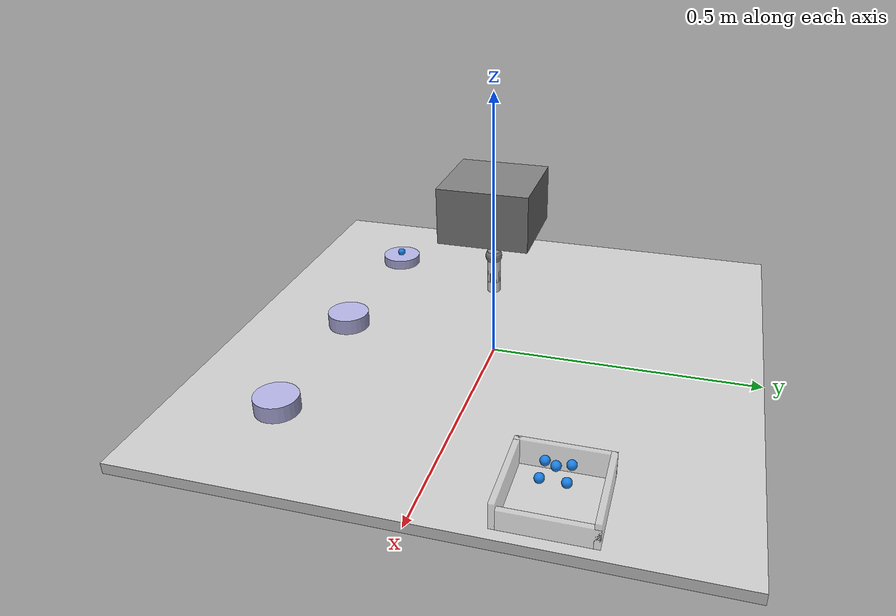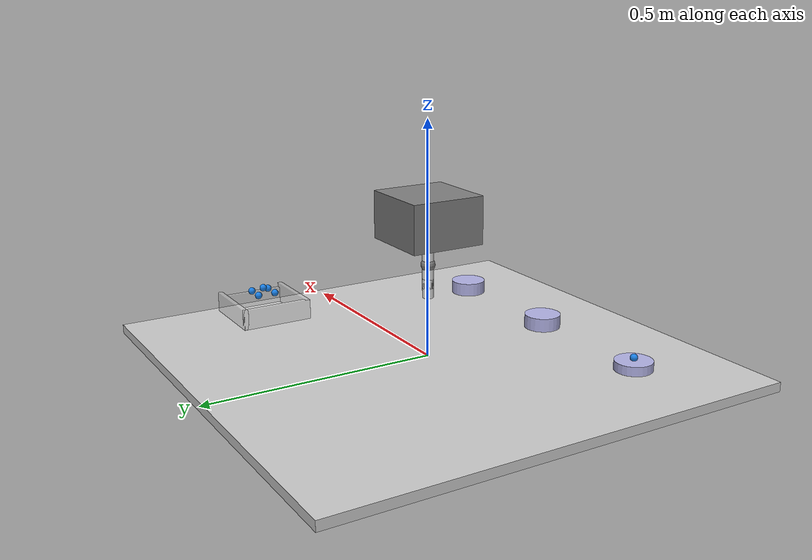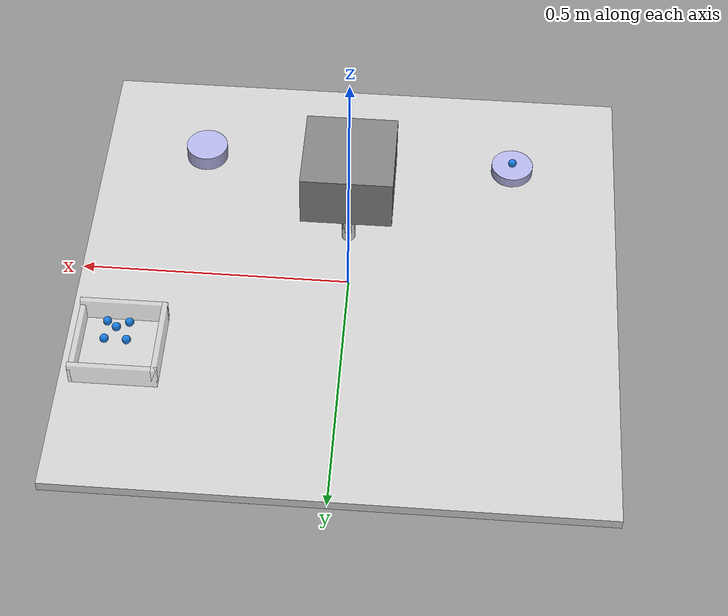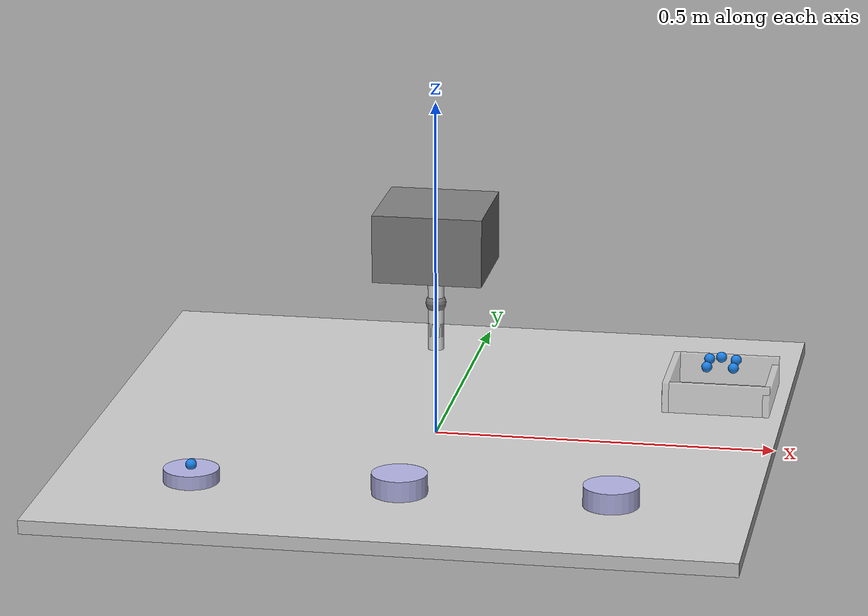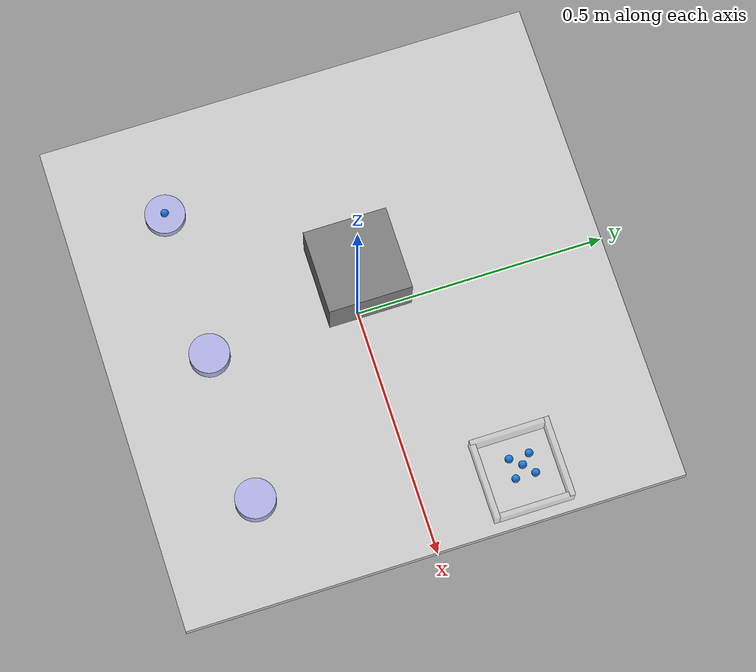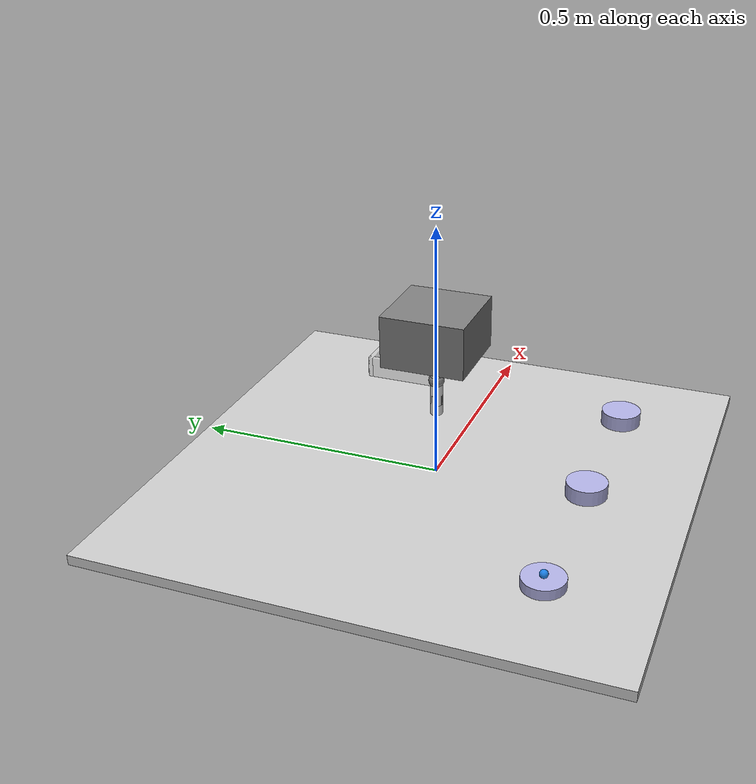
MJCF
<?xml version="1.0" encoding="utf-8"?>
<mujoco model="particle_pipette_system">
    <compiler angle="radian" coordinate="local" meshdir="../meshes" texturedir="../textures"/>
    <option timestep="0.001" iterations="100" solver="Newton" tolerance="1e-10" gravity="0 0 -9.81"/>

    <size nconmax="1000" njmax="2000" nstack="1000000"/>

    <asset>
        <material name="well_material" rgba="0.7 0.7 0.9 1"/>
        <material name="pipette_material" rgba="0.9 0.9 0.9 1"/>
        <material name="liquid_material" rgba="0.2 0.6 1.0 0.8"/>
        <material name="machine_material" rgba="0.5 0.5 0.5 1"/>
        <material name="surface_material" rgba="0.8 0.8 0.8 1"/>
        <material name="particle_material" rgba="0.1 0.5 0.9 0.9"/>
        <material name="transparent" rgba="0.9 0.9 0.9 0.3"/>
        <material name="container_material" rgba="0.8 0.8 0.8 0.4"/>
    </asset>

    <default>
        <geom friction="0.5 0.1 0.1" solimp="0.9 0.95 0.001" solref="0.02 1"/>
        <joint damping="0.1"/>
    </default>

    <worldbody>
        <!-- Lighting and camera -->
        <light directional="true" diffuse=".8 .8 .8" specular=".2 .2 .2" pos="0 0 5" dir="0 0 -1"/>
        <camera name="top_view" pos="0 0 1.5" xyaxes="1 0 0 0 1 0"/>
        <camera name="side_view" pos="1.0 0 0.5" xyaxes="0 1 0 0 0 1"/>

        <!-- Surface -->
        <body name="surface" pos="0 0 0">
            <geom type="box" size="0.5 0.5 0.01" rgba="0.8 0.8 0.8 1" material="container_material"/>
        </body>

        <!-- Wells with particle liquid -->
        <body name="well_1" pos="-0.3 -0.3 0.0">
            <geom name="well_1_wall" type="cylinder" size="0.04 0.03" material="well_material"/>
            <geom name="well_1_bottom" type="cylinder" size="0.035 0.005" pos="0 0 -0.025" material="well_material"/>
            <site name="well_1_site" pos="0 0 0" size="0.005"/>
        </body>

        <!-- Transparent container for loose particles -->

        <body name="well_2" pos="0 -0.3 0.01">
            <geom name="well_2_wall" type="cylinder" size="0.04 0.03" material="well_material"/>
            <geom name="well_2_bottom" type="cylinder" size="0.035 0.005" pos="0 0 -0.025" material="well_material"/>
            <site name="well_2_site" pos="0 0 0" size="0.005"/>
        </body>

        <body name="well_3" pos="0.3 -0.3 0.01">
            <geom name="well_3_wall" type="cylinder" size="0.04 0.03" material="well_material"/>
            <geom name="well_3_bottom" type="cylinder" size="0.035 0.005" pos="0 0 -0.025" material="well_material"/>
            <site name="well_3_site" pos="0 0 0" size="0.005"/>
        </body>

        <!-- Transparent container for loose particles -->
        <body name="particle_container" pos="0.4 0.2 0.00">
            <!-- Container walls (transparent) -->
            <geom name="container_bottom" type="box" size="0.08 0.08 0.005" pos="0 0 0" material="container_material"/>
            <geom name="container_wall_1" type="box" size="0.005 0.08 0.02" pos="0.075 0 0.025" material="container_material"/>
            <geom name="container_wall_2" type="box" size="0.005 0.08 0.03" pos="-0.075 0 0.025" material="container_material"/>
            <geom name="container_wall_3" type="box" size="0.08 0.005 0.03" pos="0 0.075 0.025" material="container_material"/>
            <geom name="container_wall_4" type="box" size="0.08 0.005 0.03" pos="0 -0.075 0.025" material="container_material"/>
        </body>

        <!-- Free particles in wells (moved to top level) -->
        <!-- Well 1 particles -->
        <body name="particle_1_1" pos="-0.315 -0.315 0.017">
            <freejoint/>
            <geom name="p_1_1" type="sphere" size="0.008" material="particle_material" mass="0.001"/>
        </body>
        <body name="particle_1_2" pos="-0.285 -0.315 0.017">
            <freejoint/>
            <geom name="p_1_2" type="sphere" size="0.008" material="particle_material" mass="0.001"/>
        </body>
        <body name="particle_1_3" pos="-0.315 -0.285 0.017">
            <freejoint/>
            <geom name="p_1_3" type="sphere" size="0.008" material="particle_material" mass="0.001"/>
        </body>
        <body name="particle_1_4" pos="-0.285 -0.285 0.017">
            <freejoint/>
            <geom name="p_1_4" type="sphere" size="0.008" material="particle_material" mass="0.001"/>
        </body>
        <body name="particle_1_5" pos="-0.3 -0.3 0.017">
            <freejoint/>
            <geom name="p_1_5" type="sphere" size="0.008" material="particle_material" mass="0.001"/>
        </body>
        <body name="particle_1_6" pos="-0.3 -0.3 0.035">
            <freejoint/>
            <geom name="p_1_6" type="sphere" size="0.008" material="particle_material" mass="0.001"/>
        </body>

        <!-- Well 2 particles -->
        <body name="particle_2_1" pos="-0.015 -0.315 0.017">
            <freejoint/>
            <geom name="p_2_1" type="sphere" size="0.008" material="particle_material" mass="0.001"/>
        </body>
        <body name="particle_2_2" pos="0.015 -0.315 0.017">
            <freejoint/>
            <geom name="p_2_2" type="sphere" size="0.008" material="particle_material" mass="0.001"/>
        </body>
        <body name="particle_2_3" pos="-0.015 -0.285 0.017">
            <freejoint/>
            <geom name="p_2_3" type="sphere" size="0.008" material="particle_material" mass="0.001"/>
        </body>
        <body name="particle_2_4" pos="0.015 -0.285 0.017">
            <freejoint/>
            <geom name="p_2_4" type="sphere" size="0.008" material="particle_material" mass="0.001"/>
        </body>

        <!-- Loose particles in container -->
        <body name="loose_particle_1" pos="0.38 0.18 0.065">
            <freejoint/>
            <geom name="lp_1" type="sphere" size="0.008" material="particle_material" mass="0.001"/>
        </body>
        <body name="loose_particle_2" pos="0.42 0.18 0.065">
            <freejoint/>
            <geom name="lp_2" type="sphere" size="0.008" material="particle_material" mass="0.001"/>
        </body>
        <body name="loose_particle_3" pos="0.38 0.22 0.065">
            <freejoint/>
            <geom name="lp_3" type="sphere" size="0.008" material="particle_material" mass="0.001"/>
        </body>
        <body name="loose_particle_4" pos="0.42 0.22 0.065">
            <freejoint/>
            <geom name="lp_4" type="sphere" size="0.008" material="particle_material" mass="0.001"/>
        </body>
        <body name="loose_particle_5" pos="0.4 0.2 0.075">
            <freejoint/>
            <geom name="lp_5" type="sphere" size="0.008" material="particle_material" mass="0.001"/>
        </body>

        <!-- Machine with pipette -->
        <body name="machine" pos="0 0 0.3">
            <!-- XY movement joints -->
            <joint name="machine_x" type="slide" axis="1 0 0" range="-0.4 0.4" damping="20"/>
            <joint name="machine_y" type="slide" axis="0 1 0" range="-0.4 0.4" damping="20"/>

            <!-- Machine body -->
            <geom name="machine_body" type="box" size="0.08 0.08 0.05" material="machine_material"/>

            <!-- Z movement mechanism -->
            <body name="z_slider" pos="0 0 -0.05">
                <joint name="machine_z" type="slide" axis="0 0 1" range="-0.25 0.05" damping="15"/>

                <!-- Pipette outer shell -->
                <body name="pipette" pos="0 0 0">
                    <geom name="pipette_outer" type="cylinder" size="0.012 0.06" pos="0 0 -0.04" material="pipette_material"/>
                    <geom name="pipette_tip" type="cylinder" size="0.012 0.02" pos="0 0 -0.10" material="pipette_material"/>

                    <!-- Transparent inner chamber (pneumatic tube) -->
                    <geom name="pipette_chamber" type="cylinder" size="0.009 0.055" pos="0 0 -0.035" material="transparent"/>

                    <!-- Plunger mechanism - connected to machine body -->
                    <body name="plunger" pos="0 0 0.05">
                        <joint name="plunger_joint" type="slide" axis="0 0 1" range="0 0.06" damping="8"/>

                        <!-- Plunger head (stays connected to machine) -->
                        <geom name="plunger_head" type="cylinder" size="0.015 0.015" pos="0 0 0" material="machine_material"/>

                        <!-- Plunger rod extends into pipette -->
                        <geom name="plunger_rod" type="cylinder" size="0.006 0.08" pos="0 0 -0.055" material="pipette_material"/>

                        <!-- Plunger seal inside chamber -->
                        <geom name="plunger_seal" type="cylinder" size="0.008 0.005" pos="0 0 -0.025" material="machine_material"/>

                        <!-- Suction zone at tip -->
                        <site name="suction_zone" pos="0 0 -0.10" size="0.015"/>
                        <site name="magnet_center" pos="0 0 -0.08" size="0.001"/>
                    </body>
                </body>
            </body>
        </body>
    </worldbody>

    <actuator>
        <!-- Machine movement controls -->
        <motor name="x_control" joint="machine_x" ctrlrange="-2 2" ctrllimited="true"/>
        <motor name="y_control" joint="machine_y" ctrlrange="-2 2" ctrllimited="true"/>
        <motor name="z_control" joint="machine_z" ctrlrange="-2 2" ctrllimited="true"/>

        <!-- Plunger control with force limits -->
        <motor name="plunger_control" joint="plunger_joint" ctrlrange="-3 3" ctrllimited="true" forcelimited="true" forcerange="-5 5"/>
    </actuator>

    <sensor>
        <!-- Position sensors -->
        <jointpos name="x_pos" joint="machine_x"/>
        <jointpos name="y_pos" joint="machine_y"/>
        <jointpos name="z_pos" joint="machine_z"/>
        <jointpos name="plunger_pos" joint="plunger_joint"/>

        <!-- Velocity sensors -->
        <jointvel name="plunger_vel" joint="plunger_joint"/>

        <!-- Site sensors -->
        <framepos name="suction_sensor" objtype="site" objname="suction_zone"/>
        <framepos name="magnet_sensor" objtype="site" objname="magnet_center"/>

        <!-- Well position sensors -->
        <framepos name="well_1_sensor" objtype="site" objname="well_1_site"/>
        <framepos name="well_2_sensor" objtype="site" objname="well_2_site"/>
        <framepos name="well_3_sensor" objtype="site" objname="well_3_site"/>
    </sensor>

    <!-- Constraints for particle cohesion (simulate surface tension) -->
    <equality>
        <!-- Connect particles in well 1 with weak springs -->
    </equality>
</mujoco>
